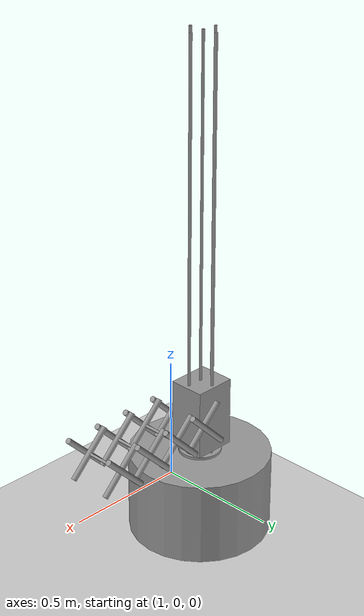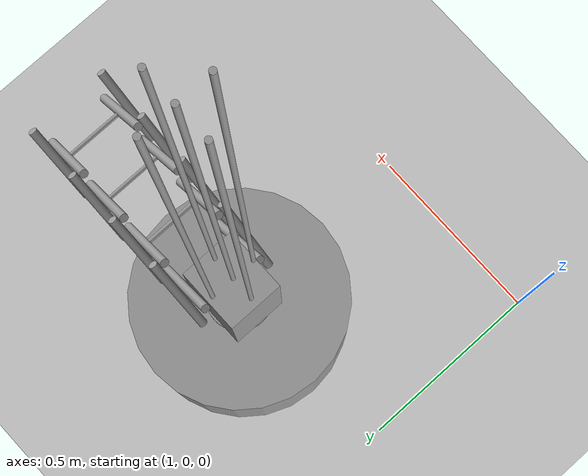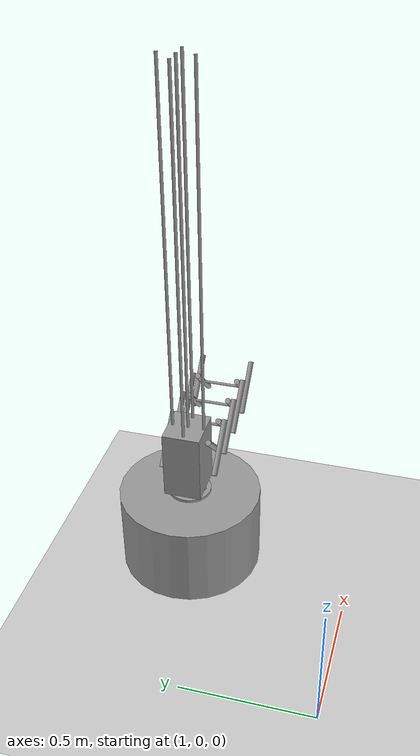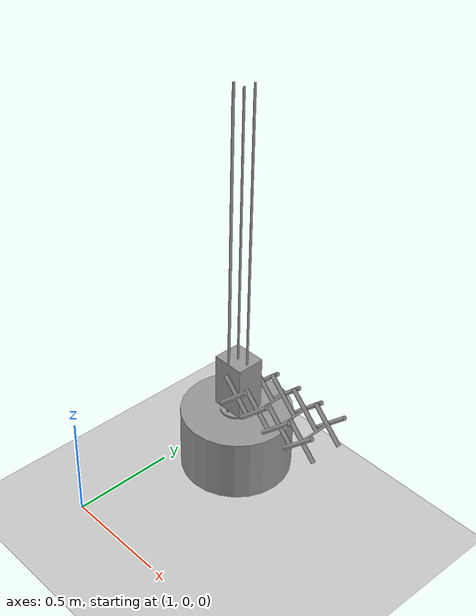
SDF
<?xml version="1.0"?>
<sdf version="1.4">
  <world name="default">
    <include>
      <uri>model://ground_plane</uri>
    </include>

    <include>
      <uri>model://sun</uri>
    </include>

    <include>
      <uri>model:///home/viswa_ns/sim/src/drone_controller/models</uri>
      <name>ArtPark</name>
      <pose>0.0 0.0 0.5 0.0 0.0 0.0</pose>

      <!-- reference to your plugin -->
      <!-- inside the sdf file "full_complete" in /home/suraj/.gazebo/models -->
    </include>

    <plugin name="ros_interface_plugin" filename="librotors_gazebo_ros_interface_plugin.so"/>

    <physics name='default_physics' default='0' type='ode'>
      <gravity>0 0 -9.8066</gravity>
      <ode>
        <solver>
          <type>quick</type>
          <iters>10</iters>
          <sor>1.3</sor>
          <use_dynamic_moi_rescaling>0</use_dynamic_moi_rescaling>
        </solver>
        <constraints>
          <cfm>0</cfm>
          <erp>0.2</erp>
          <contact_max_correcting_vel>100</contact_max_correcting_vel>
          <contact_surface_layer>0.001</contact_surface_layer>
        </constraints>
      </ode>
      <max_step_size>0.002</max_step_size>
      <real_time_factor>1</real_time_factor>
      <real_time_update_rate>700</real_time_update_rate>
      <magnetic_field>6e-06 2.3e-05 -4.2e-05</magnetic_field>
    </physics>

  </world>
</sdf>
